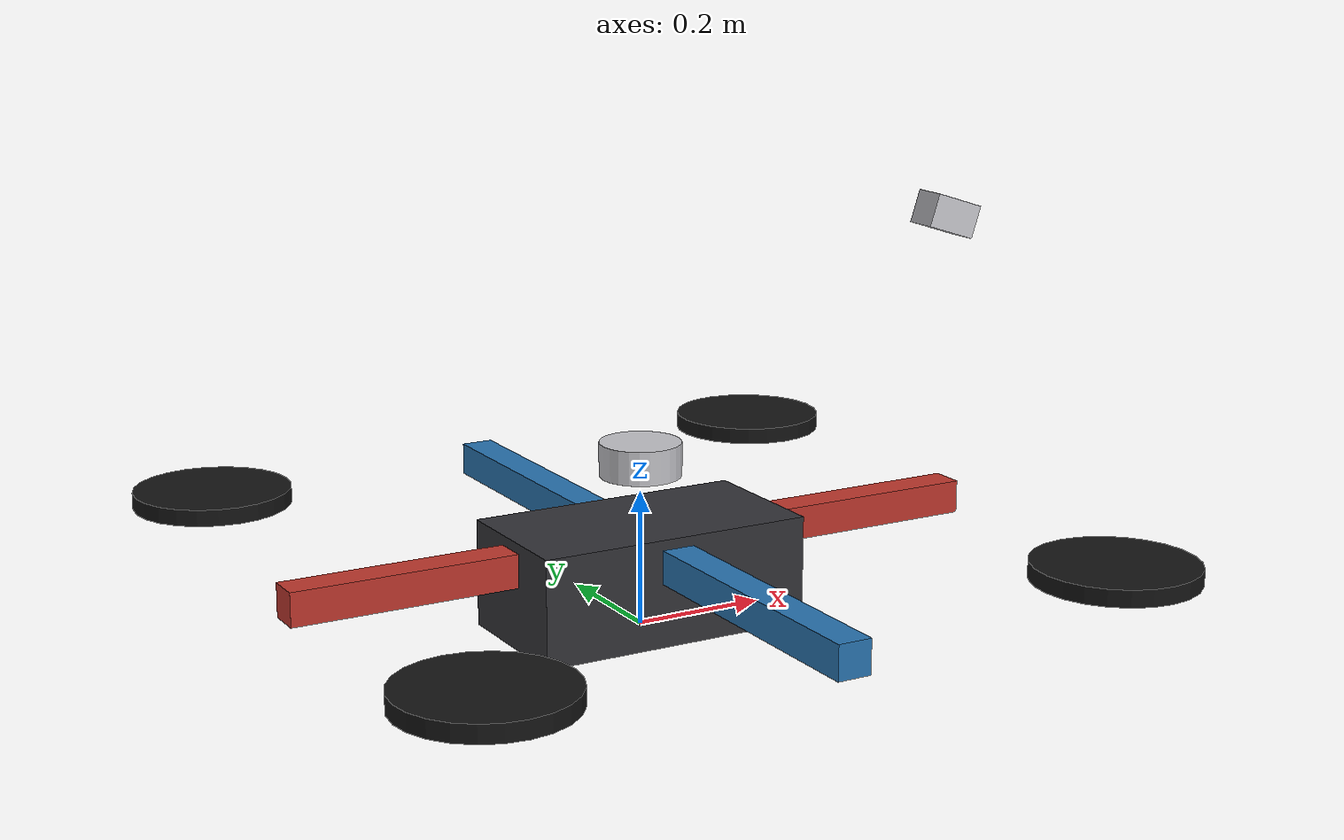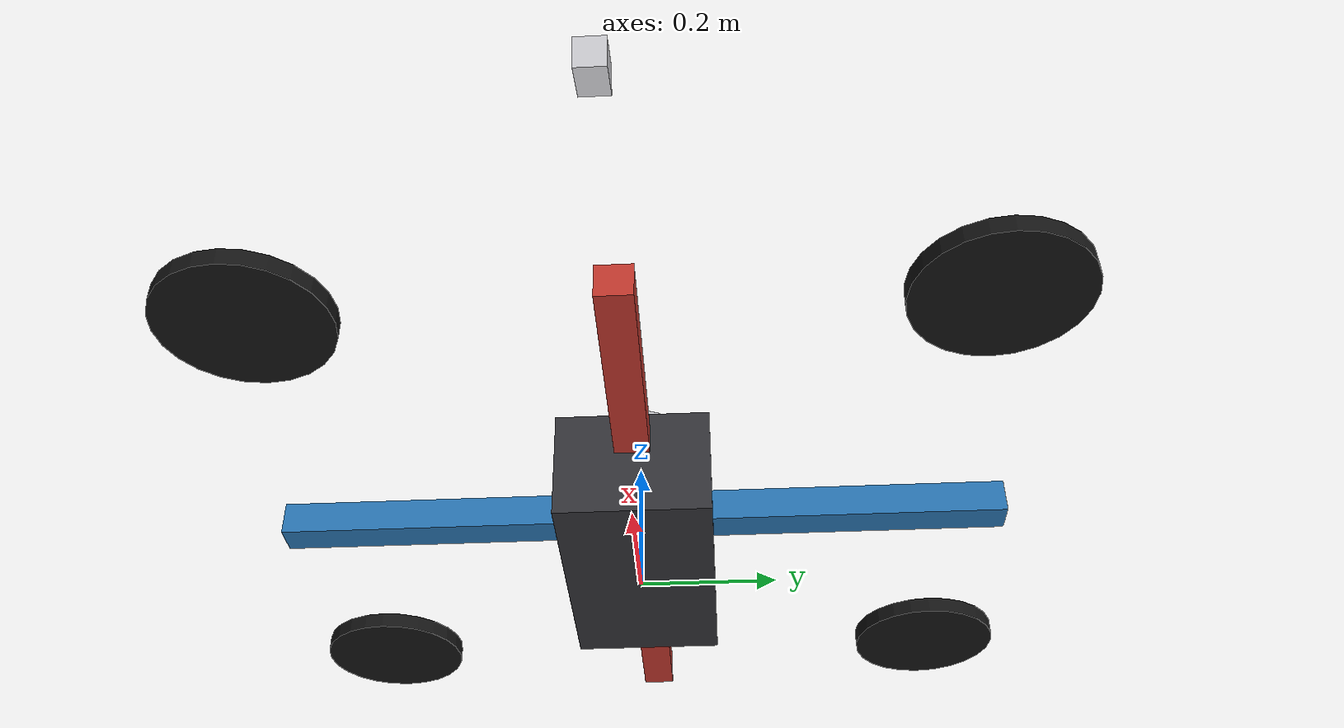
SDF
<?xml version="1.0"?>
<sdf version="1.6">
  <model name="vln_uav">
    <static>false</static>

    <link name="base_footprint">
      <gravity>false</gravity>
      <self_collide>false</self_collide>
      <kinematic>false</kinematic>
      <inertial>
        <mass>6.0</mass>
        <inertia>
          <ixx>0.8</ixx>
          <iyy>0.8</iyy>
          <izz>1.2</izz>
          <ixy>0.0</ixy>
          <ixz>0.0</ixz>
          <iyz>0.0</iyz>
        </inertia>
      </inertial>

      <collision name="body_collision">
        <pose>0 0 0.08 0 0 0</pose>
        <geometry>
          <box>
            <size>0.42 0.22 0.16</size>
          </box>
        </geometry>
      </collision>

      <visual name="body_visual">
        <pose>0 0 0.08 0 0 0</pose>
        <geometry>
          <box>
            <size>0.42 0.22 0.16</size>
          </box>
        </geometry>
        <material>
          <ambient>0.20 0.20 0.22 1</ambient>
          <diffuse>0.20 0.20 0.22 1</diffuse>
        </material>
      </visual>

      <visual name="arm_x_visual">
        <pose>0 0 0.12 0 0 0</pose>
        <geometry>
          <box>
            <size>1.10 0.05 0.05</size>
          </box>
        </geometry>
        <material>
          <ambient>0.76 0.22 0.18 1</ambient>
          <diffuse>0.76 0.22 0.18 1</diffuse>
        </material>
      </visual>

      <visual name="arm_y_visual">
        <pose>0 0 0.12 0 0 1.5708</pose>
        <geometry>
          <box>
            <size>1.10 0.05 0.05</size>
          </box>
        </geometry>
        <material>
          <ambient>0.16 0.46 0.70 1</ambient>
          <diffuse>0.16 0.46 0.70 1</diffuse>
        </material>
      </visual>

      <visual name="rotor_fl_visual">
        <pose>0.48 0.48 0.14 0 0 0</pose>
        <geometry>
          <cylinder>
            <radius>0.12</radius>
            <length>0.025</length>
          </cylinder>
        </geometry>
        <material>
          <ambient>0.08 0.08 0.08 1</ambient>
          <diffuse>0.08 0.08 0.08 1</diffuse>
        </material>
      </visual>

      <visual name="rotor_fr_visual">
        <pose>0.48 -0.48 0.14 0 0 0</pose>
        <geometry>
          <cylinder>
            <radius>0.12</radius>
            <length>0.025</length>
          </cylinder>
        </geometry>
        <material>
          <ambient>0.08 0.08 0.08 1</ambient>
          <diffuse>0.08 0.08 0.08 1</diffuse>
        </material>
      </visual>

      <visual name="rotor_rl_visual">
        <pose>-0.48 0.48 0.14 0 0 0</pose>
        <geometry>
          <cylinder>
            <radius>0.12</radius>
            <length>0.025</length>
          </cylinder>
        </geometry>
        <material>
          <ambient>0.08 0.08 0.08 1</ambient>
          <diffuse>0.08 0.08 0.08 1</diffuse>
        </material>
      </visual>

      <visual name="rotor_rr_visual">
        <pose>-0.48 -0.48 0.14 0 0 0</pose>
        <geometry>
          <cylinder>
            <radius>0.12</radius>
            <length>0.025</length>
          </cylinder>
        </geometry>
        <material>
          <ambient>0.08 0.08 0.08 1</ambient>
          <diffuse>0.08 0.08 0.08 1</diffuse>
        </material>
      </visual>
    </link>

    <link name="camera_link">
      <pose>0.5 -0.04 0.57 0 0.314 0</pose>
      <gravity>false</gravity>
      <self_collide>false</self_collide>
      <kinematic>false</kinematic>
      <inertial>
        <mass>0.2</mass>
        <inertia>
          <ixx>0.001</ixx>
          <iyy>0.001</iyy>
          <izz>0.001</izz>
          <ixy>0.0</ixy>
          <ixz>0.0</ixz>
          <iyz>0.0</iyz>
        </inertia>
      </inertial>
      <visual name="camera_visual">
        <geometry>
          <box>
            <size>0.08 0.05 0.05</size>
          </box>
        </geometry>
        <material>
          <ambient>0.82 0.82 0.84 1</ambient>
          <diffuse>0.82 0.82 0.84 1</diffuse>
        </material>
      </visual>
      <sensor type="camera" name="front_rgb_camera">
        <always_on>true</always_on>
        <update_rate>10</update_rate>
        <camera name="front_rgb">
          <horizontal_fov>2.0</horizontal_fov>
          <image>
            <width>1080</width>
            <height>720</height>
            <format>R8G8B8</format>
          </image>
          <clip>
            <near>0.05</near>
            <far>80.0</far>
          </clip>
        </camera>
        <plugin name="front_rgb_plugin" filename="libgazebo_ros_camera.so">
          <alwaysOn>true</alwaysOn>
          <updateRate>0.0</updateRate>
          <cameraName>magv_camera</cameraName>
          <imageTopicName>/magv/camera/image_raw</imageTopicName>
          <cameraInfoTopicName>/magv/camera/camera_info</cameraInfoTopicName>
          <frameName>camera_optical_frame</frameName>
          <hackBaseline>0.0</hackBaseline>
          <distortionK1>0.0</distortionK1>
          <distortionK2>0.0</distortionK2>
          <distortionK3>0.0</distortionK3>
          <distortionT1>0.0</distortionT1>
          <distortionT2>0.0</distortionT2>
        </plugin>
      </sensor>
    </link>

    <joint name="camera_joint" type="fixed">
      <parent>base_footprint</parent>
      <child>camera_link</child>
    </joint>

    <link name="lidar_link">
      <pose>0 0 0.25 0 0 0</pose>
      <gravity>false</gravity>
      <self_collide>false</self_collide>
      <kinematic>false</kinematic>
      <inertial>
        <mass>0.15</mass>
        <inertia>
          <ixx>0.001</ixx>
          <iyy>0.001</iyy>
          <izz>0.001</izz>
          <ixy>0.0</ixy>
          <ixz>0.0</ixz>
          <iyz>0.0</iyz>
        </inertia>
      </inertial>
      <visual name="lidar_visual">
        <geometry>
          <cylinder>
            <radius>0.06</radius>
            <length>0.05</length>
          </cylinder>
        </geometry>
        <material>
          <ambient>0.78 0.78 0.80 1</ambient>
          <diffuse>0.78 0.78 0.80 1</diffuse>
        </material>
      </visual>

      <sensor type="depth" name="forward_depth_lidar">
        <always_on>true</always_on>
        <update_rate>8</update_rate>
        <camera name="depth_lidar_camera">
          <horizontal_fov>2.2</horizontal_fov>
          <image>
            <width>640</width>
            <height>64</height>
            <format>R8G8B8</format>
          </image>
          <clip>
            <near>0.15</near>
            <far>25.0</far>
          </clip>
        </camera>
        <plugin name="depth_lidar_plugin" filename="libgazebo_ros_depth_camera.so">
          <alwaysOn>true</alwaysOn>
          <updateRate>0.0</updateRate>
          <cameraName>magv_depth_lidar</cameraName>
          <imageTopicName>/magv/lidar/rgb/image_raw</imageTopicName>
          <cameraInfoTopicName>/magv/lidar/rgb/camera_info</cameraInfoTopicName>
          <depthImageTopicName>/magv/lidar/depth/image_raw</depthImageTopicName>
          <depthImageCameraInfoTopicName>/magv/lidar/depth/camera_info</depthImageCameraInfoTopicName>
          <pointCloudTopicName>/magv/scan/3d</pointCloudTopicName>
          <frameName>lidar_optical_frame</frameName>
          <hackBaseline>0.0</hackBaseline>
          <pointCloudCutoff>0.15</pointCloudCutoff>
          <distortionK1>0.0</distortionK1>
          <distortionK2>0.0</distortionK2>
          <distortionK3>0.0</distortionK3>
          <distortionT1>0.0</distortionT1>
          <distortionT2>0.0</distortionT2>
        </plugin>
      </sensor>

      <sensor type="ray" name="planar_laser">
        <always_on>true</always_on>
        <update_rate>12</update_rate>
        <ray>
          <scan>
            <horizontal>
              <samples>720</samples>
              <resolution>1</resolution>
              <min_angle>-3.14159</min_angle>
              <max_angle>3.14159</max_angle>
            </horizontal>
          </scan>
          <range>
            <min>0.12</min>
            <max>25.0</max>
            <resolution>0.02</resolution>
          </range>
        </ray>
        <plugin name="planar_laser_plugin" filename="libgazebo_ros_laser.so">
          <alwaysOn>true</alwaysOn>
          <updateRate>0.0</updateRate>
          <gaussianNoise>0.01</gaussianNoise>
          <topicName>/magv/scan/2d</topicName>
          <frameName>lidar_link</frameName>
        </plugin>
      </sensor>
    </link>

    <joint name="lidar_joint" type="fixed">
      <parent>base_footprint</parent>
      <child>lidar_link</child>
    </joint>

    <plugin name="planar_move_controller" filename="libgazebo_ros_planar_move.so">
      <robotNamespace>/</robotNamespace>
      <commandTopic>/magv/omni_drive_controller/cmd_vel</commandTopic>
      <odometryTopic>/magv/odometry/gt</odometryTopic>
      <odometryFrame>map</odometryFrame>
      <robotBaseFrame>base_footprint</robotBaseFrame>
      <odometryRate>30.0</odometryRate>
      <cmdTimeout>0.5</cmdTimeout>
    </plugin>
  </model>
</sdf>
